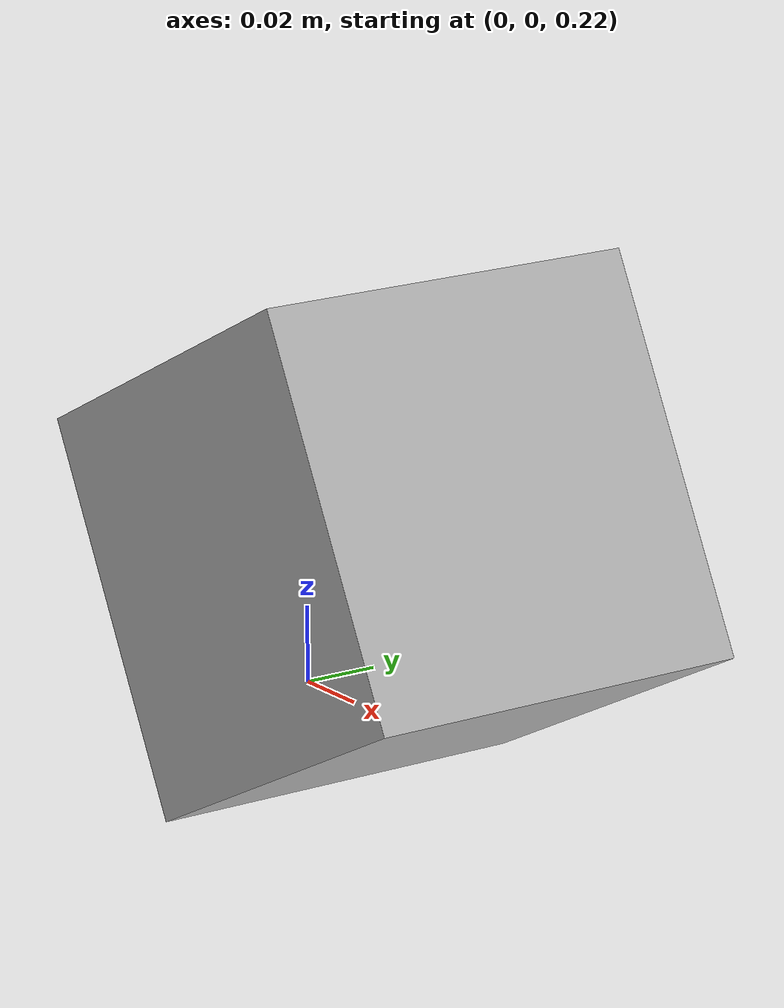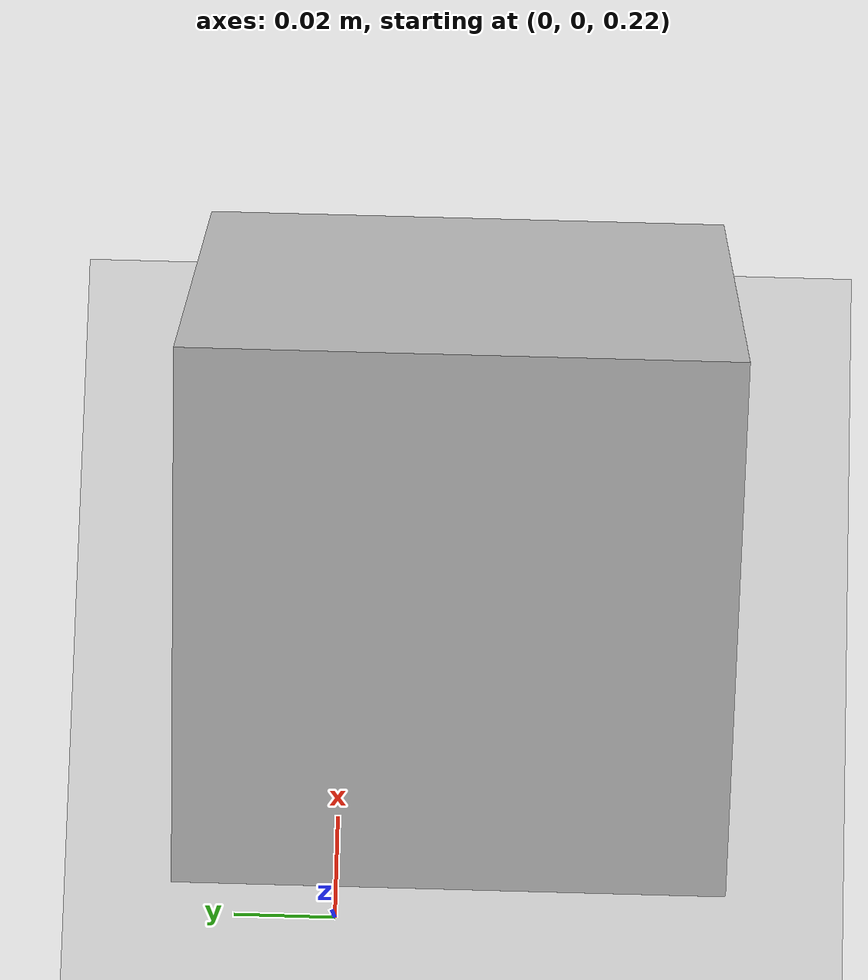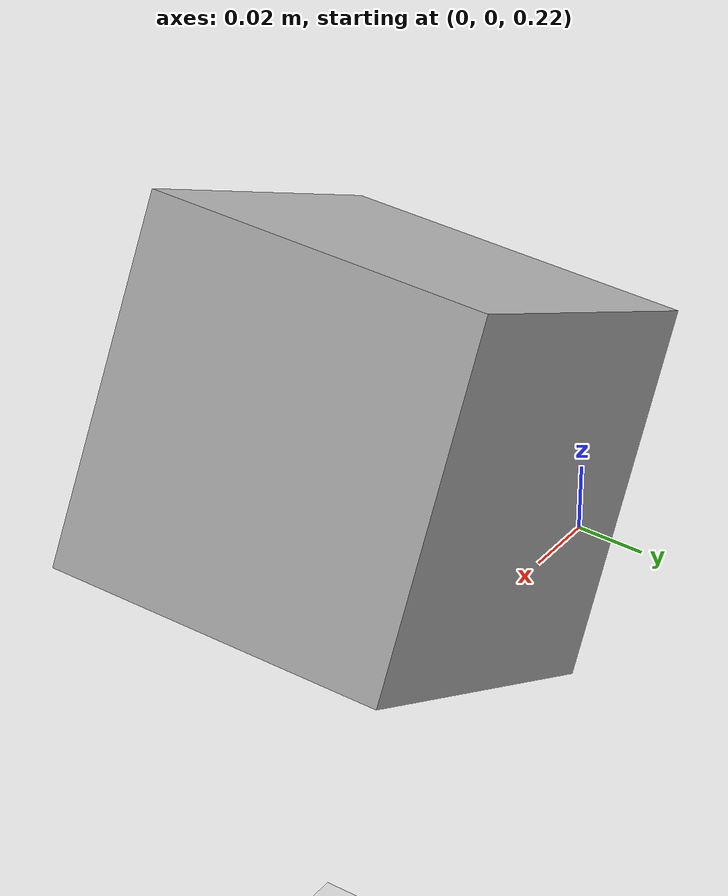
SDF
<?xml version="1.0"?>
<!--# Copyright (C) 2022, Advanced Micro Devices, Inc.-->
<sdf version="1.5">
  <world name="camera2">

    <!-- A global light source -->
    <include>
      <uri>model://sun</uri>
    </include>

    <!-- A ground plane -->
    <include>
      <uri>model://ground_plane</uri>
      <pose>0 0 0 0 0 0</pose>
    </include>

    <!-- camera view -->
    <gui>
      <camera name="user_default">
            <pose>0.556 -0.9132 0.8266 0 0.59 2.15</pose>
      </camera>
    </gui>

    <!-- camera model -->
    <include>
      <uri>model://camera-plugin</uri>
      <pose>0 -0.07266 0.3 0 1.1 0</pose>
      <static>1</static>
    </include>

  </world>
</sdf>

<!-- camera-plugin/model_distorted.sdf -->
<!--# Copyright (C) 2022, Advanced Micro Devices, Inc.-->
<sdf version="1.5">
  <model name="distorted_camera">
    <link name="link">
      <pose>0.05 0.05 0.05 0 0 0</pose>
      <inertial>
        <mass>0.1</mass>
        <inertia>
          <ixx>0.000166667</ixx>
          <iyy>0.000166667</iyy>
          <izz>0.000166667</izz>
        </inertia>
      </inertial>
      <collision name="collision">
        <geometry>
          <box>
            <size>0.1 0.1 0.1</size>
          </box>
        </geometry>
      </collision>
      <visual name="visual">
        <geometry>
          <box>
            <size>0.1 0.1 0.1</size>
          </box>
        </geometry>
      </visual>
      <sensor name="camera" type="camera">
        <camera>
          <horizontal_fov>1.047</horizontal_fov>
          <image>
            <width>640</width>
            <height>480</height>
          </image>
          <clip>
            <near>0.1</near>
            <far>100</far>
          </clip>
          <distortion>
            <k1>-0.25</k1>
            <k2>0.12</k2>
            <k3>0.0</k3>
            <p1>-0.00028</p1>
            <p2>-0.00005</p2>
            <center>0.5 0.5</center>
          </distortion>
        </camera>
        <always_on>1</always_on>
        <update_rate>30</update_rate>
        <visualize>true</visualize>
      </sensor>
    </link>
  </model>
</sdf>
